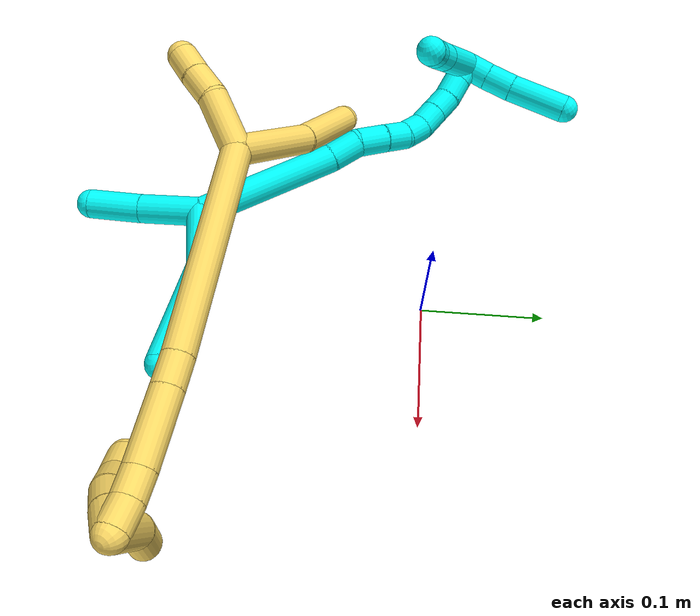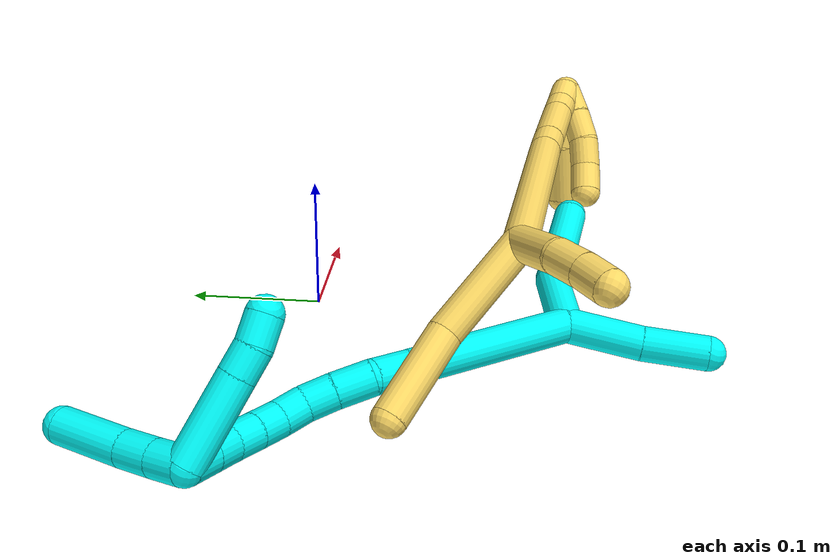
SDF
<sdf version="1.7">
 <world name="default">
  <model name="3">
   <static>0</static>
   <link name="3">
    <collision name="collision-cylinder-e_1_2_8">
     <pose>0.028503 -0.000147 -0.002781 3.08887 1.4734 3.08347</pose>
     <geometry><cylinder><radius>0.0125</radius><length>0.057277</length></cylinder></geometry>
     <surface>
      <friction><ode><mu>1.16</mu><mu2>1.16</mu2><slip1>0</slip1><slip2>0</slip2></ode></friction>
      <contact><ode><kp>1e+06</kp><kd>1</kd><max_vel>0</max_vel><min_depth>0.001</min_depth></ode></contact>
     </surface>
    </collision>
    <visual name="visual-cylinder-e_1_2_8">
     <pose>0.028503 -0.000147 -0.002781 3.08887 1.4734 3.08347</pose>
     <geometry><cylinder><radius>0.0125</radius><length>0.057277</length></cylinder></geometry>
     <material><ambient>0.003922 1 0.996078 1</ambient></material>
    </visual>
    <collision name="collision-cylinder-e_2_8_6">
     <pose>0.101322 -0.013623 -0.002784 1.36534 1.27271 1.08199</pose>
     <geometry><cylinder><radius>0.0125</radius><length>0.092723</length></cylinder></geometry>
     <surface>
      <friction><ode><mu>1.16</mu><mu2>1.16</mu2><slip1>0</slip1><slip2>0</slip2></ode></friction>
      <contact><ode><kp>1e+06</kp><kd>1</kd><max_vel>0</max_vel><min_depth>0.001</min_depth></ode></contact>
     </surface>
    </collision>
    <visual name="visual-cylinder-e_2_8_6">
     <pose>0.101322 -0.013623 -0.002784 1.36534 1.27271 1.08199</pose>
     <geometry><cylinder><radius>0.0125</radius><length>0.092723</length></cylinder></geometry>
     <material><ambient>0.003922 1 0.996078 1</ambient></material>
    </visual>
    <collision name="collision-cylinder-e_1_2_9">
     <pose>-0.006811 -0.025396 0.006355 1.3256 -0.25452 -0.199097</pose>
     <geometry><cylinder><radius>0.0125</radius><length>0.054101</length></cylinder></geometry>
     <surface>
      <friction><ode><mu>1.16</mu><mu2>1.16</mu2><slip1>0</slip1><slip2>0</slip2></ode></friction>
      <contact><ode><kp>1e+06</kp><kd>1</kd><max_vel>0</max_vel><min_depth>0.001</min_depth></ode></contact>
     </surface>
    </collision>
    <visual name="visual-cylinder-e_1_2_9">
     <pose>-0.006811 -0.025396 0.006355 1.3256 -0.25452 -0.199097</pose>
     <geometry><cylinder><radius>0.0125</radius><length>0.054101</length></cylinder></geometry>
     <material><ambient>0.003922 1 0.996078 1</ambient></material>
    </visual>
    <collision name="collision-cylinder-e_2_9_5">
     <pose>-0.018758 -0.071855 0.020236 1.22761 -0.225748 -0.159403</pose>
     <geometry><cylinder><radius>0.0125</radius><length>0.045899</length></cylinder></geometry>
     <surface>
      <friction><ode><mu>1.16</mu><mu2>1.16</mu2><slip1>0</slip1><slip2>0</slip2></ode></friction>
      <contact><ode><kp>1e+06</kp><kd>1</kd><max_vel>0</max_vel><min_depth>0.001</min_depth></ode></contact>
     </surface>
    </collision>
    <visual name="visual-cylinder-e_2_9_5">
     <pose>-0.018758 -0.071855 0.020236 1.22761 -0.225748 -0.159403</pose>
     <geometry><cylinder><radius>0.0125</radius><length>0.045899</length></cylinder></geometry>
     <material><ambient>0.003922 1 0.996078 1</ambient></material>
    </visual>
    <collision name="collision-cylinder-e_1_2_10">
     <pose>-0.024795 0.054108 -0.01634 -1.86408 -0.413408 0.55043</pose>
     <geometry><cylinder><radius>0.0125</radius><length>0.123441</length></cylinder></geometry>
     <surface>
      <friction><ode><mu>1.16</mu><mu2>1.16</mu2><slip1>0</slip1><slip2>0</slip2></ode></friction>
      <contact><ode><kp>1e+06</kp><kd>1</kd><max_vel>0</max_vel><min_depth>0.001</min_depth></ode></contact>
     </surface>
    </collision>
    <visual name="visual-cylinder-e_1_2_10">
     <pose>-0.024795 0.054108 -0.01634 -1.86408 -0.413408 0.55043</pose>
     <geometry><cylinder><radius>0.0125</radius><length>0.123441</length></cylinder></geometry>
     <material><ambient>0.003922 1 0.996078 1</ambient></material>
    </visual>
    <collision name="collision-cylinder-e_2_10_11">
     <pose>-0.056179 0.120296 -0.034977 -1.75866 -0.491872 0.58884</pose>
     <geometry><cylinder><radius>0.0125</radius><length>0.027903</length></cylinder></geometry>
     <surface>
      <friction><ode><mu>1.16</mu><mu2>1.16</mu2><slip1>0</slip1><slip2>0</slip2></ode></friction>
      <contact><ode><kp>1e+06</kp><kd>1</kd><max_vel>0</max_vel><min_depth>0.001</min_depth></ode></contact>
     </surface>
    </collision>
    <visual name="visual-cylinder-e_2_10_11">
     <pose>-0.056179 0.120296 -0.034977 -1.75866 -0.491872 0.58884</pose>
     <geometry><cylinder><radius>0.0125</radius><length>0.027903</length></cylinder></geometry>
     <material><ambient>0.003922 1 0.996078 1</ambient></material>
    </visual>
    <collision name="collision-cylinder-e_3_11_12">
     <pose>-0.067004 0.143422 -0.043476 -2.08248 -0.322691 0.542437</pose>
     <geometry><cylinder><radius>0.0125</radius><length>0.026713</length></cylinder></geometry>
     <surface>
      <friction><ode><mu>1.16</mu><mu2>1.16</mu2><slip1>0</slip1><slip2>0</slip2></ode></friction>
      <contact><ode><kp>1e+06</kp><kd>1</kd><max_vel>0</max_vel><min_depth>0.001</min_depth></ode></contact>
     </surface>
    </collision>
    <visual name="visual-cylinder-e_3_11_12">
     <pose>-0.067004 0.143422 -0.043476 -2.08248 -0.322691 0.542437</pose>
     <geometry><cylinder><radius>0.0125</radius><length>0.026713</length></cylinder></geometry>
     <material><ambient>0.003922 1 0.996078 1</ambient></material>
    </visual>
    <collision name="collision-cylinder-e_4_12_13">
     <pose>-0.074937 0.16294 -0.055058 -2.13642 -0.353001 0.627527</pose>
     <geometry><cylinder><radius>0.0125</radius><length>0.021394</length></cylinder></geometry>
     <surface>
      <friction><ode><mu>1.16</mu><mu2>1.16</mu2><slip1>0</slip1><slip2>0</slip2></ode></friction>
      <contact><ode><kp>1e+06</kp><kd>1</kd><max_vel>0</max_vel><min_depth>0.001</min_depth></ode></contact>
     </surface>
    </collision>
    <visual name="visual-cylinder-e_4_12_13">
     <pose>-0.074937 0.16294 -0.055058 -2.13642 -0.353001 0.627527</pose>
     <geometry><cylinder><radius>0.0125</radius><length>0.021394</length></cylinder></geometry>
     <material><ambient>0.003922 1 0.996078 1</ambient></material>
    </visual>
    <collision name="collision-cylinder-e_5_13_14">
     <pose>-0.084659 0.178723 -0.063809 -2.00302 -0.642479 0.959004</pose>
     <geometry><cylinder><radius>0.0125</radius><length>0.020107</length></cylinder></geometry>
     <surface>
      <friction><ode><mu>1.16</mu><mu2>1.16</mu2><slip1>0</slip1><slip2>0</slip2></ode></friction>
      <contact><ode><kp>1e+06</kp><kd>1</kd><max_vel>0</max_vel><min_depth>0.001</min_depth></ode></contact>
     </surface>
    </collision>
    <visual name="visual-cylinder-e_5_13_14">
     <pose>-0.084659 0.178723 -0.063809 -2.00302 -0.642479 0.959004</pose>
     <geometry><cylinder><radius>0.0125</radius><length>0.020107</length></cylinder></geometry>
     <material><ambient>0.003922 1 0.996078 1</ambient></material>
    </visual>
    <collision name="collision-cylinder-e_6_14_15">
     <pose>-0.09776 0.193242 -0.067661 -1.63729 -0.774984 0.822654</pose>
     <geometry><cylinder><radius>0.0125</radius><length>0.020229</length></cylinder></geometry>
     <surface>
      <friction><ode><mu>1.16</mu><mu2>1.16</mu2><slip1>0</slip1><slip2>0</slip2></ode></friction>
      <contact><ode><kp>1e+06</kp><kd>1</kd><max_vel>0</max_vel><min_depth>0.001</min_depth></ode></contact>
     </surface>
    </collision>
    <visual name="visual-cylinder-e_6_14_15">
     <pose>-0.09776 0.193242 -0.067661 -1.63729 -0.774984 0.822654</pose>
     <geometry><cylinder><radius>0.0125</radius><length>0.020229</length></cylinder></geometry>
     <material><ambient>0.003922 1 0.996078 1</ambient></material>
    </visual>
    <collision name="collision-cylinder-e_7_15_16">
     <pose>-0.111805 0.207695 -0.06857 -1.63003 -0.765199 0.807132</pose>
     <geometry><cylinder><radius>0.0125</radius><length>0.020119</length></cylinder></geometry>
     <surface>
      <friction><ode><mu>1.16</mu><mu2>1.16</mu2><slip1>0</slip1><slip2>0</slip2></ode></friction>
      <contact><ode><kp>1e+06</kp><kd>1</kd><max_vel>0</max_vel><min_depth>0.001</min_depth></ode></contact>
     </surface>
    </collision>
    <visual name="visual-cylinder-e_7_15_16">
     <pose>-0.111805 0.207695 -0.06857 -1.63003 -0.765199 0.807132</pose>
     <geometry><cylinder><radius>0.0125</radius><length>0.020119</length></cylinder></geometry>
     <material><ambient>0.003922 1 0.996078 1</ambient></material>
    </visual>
    <collision name="collision-cylinder-e_8_16_17">
     <pose>-0.126449 0.221267 -0.06768 -1.36526 -0.870782 0.72312</pose>
     <geometry><cylinder><radius>0.0125</radius><length>0.020072</length></cylinder></geometry>
     <surface>
      <friction><ode><mu>1.16</mu><mu2>1.16</mu2><slip1>0</slip1><slip2>0</slip2></ode></friction>
      <contact><ode><kp>1e+06</kp><kd>1</kd><max_vel>0</max_vel><min_depth>0.001</min_depth></ode></contact>
     </surface>
    </collision>
    <visual name="visual-cylinder-e_8_16_17">
     <pose>-0.126449 0.221267 -0.06768 -1.36526 -0.870782 0.72312</pose>
     <geometry><cylinder><radius>0.0125</radius><length>0.020072</length></cylinder></geometry>
     <material><ambient>0.003922 1 0.996078 1</ambient></material>
    </visual>
    <collision name="collision-cylinder-e_9_17_1">
     <pose>-0.141765 0.233925 -0.065016 -1.3615 -0.868075 0.718253</pose>
     <geometry><cylinder><radius>0.0125</radius><length>0.020023</length></cylinder></geometry>
     <surface>
      <friction><ode><mu>1.16</mu><mu2>1.16</mu2><slip1>0</slip1><slip2>0</slip2></ode></friction>
      <contact><ode><kp>1e+06</kp><kd>1</kd><max_vel>0</max_vel><min_depth>0.001</min_depth></ode></contact>
     </surface>
    </collision>
    <visual name="visual-cylinder-e_9_17_1">
     <pose>-0.141765 0.233925 -0.065016 -1.3615 -0.868075 0.718253</pose>
     <geometry><cylinder><radius>0.0125</radius><length>0.020023</length></cylinder></geometry>
     <material><ambient>0.003922 1 0.996078 1</ambient></material>
    </visual>
    <collision name="collision-cylinder-e_1_1_18">
     <pose>-0.143473 0.248053 -0.069681 -2.22731 0.542192 -1.02863</pose>
     <geometry><cylinder><radius>0.0125</radius><length>0.022987</length></cylinder></geometry>
     <surface>
      <friction><ode><mu>1.16</mu><mu2>1.16</mu2><slip1>0</slip1><slip2>0</slip2></ode></friction>
      <contact><ode><kp>1e+06</kp><kd>1</kd><max_vel>0</max_vel><min_depth>0.001</min_depth></ode></contact>
     </surface>
    </collision>
    <visual name="visual-cylinder-e_1_1_18">
     <pose>-0.143473 0.248053 -0.069681 -2.22731 0.542192 -1.02863</pose>
     <geometry><cylinder><radius>0.0125</radius><length>0.022987</length></cylinder></geometry>
     <material><ambient>0.003922 1 0.996078 1</ambient></material>
    </visual>
    <collision name="collision-cylinder-e_2_18_19">
     <pose>-0.131129 0.264778 -0.081741 -2.16652 0.536559 -0.956627</pose>
     <geometry><cylinder><radius>0.0125</radius><length>0.025093</length></cylinder></geometry>
     <surface>
      <friction><ode><mu>1.16</mu><mu2>1.16</mu2><slip1>0</slip1><slip2>0</slip2></ode></friction>
      <contact><ode><kp>1e+06</kp><kd>1</kd><max_vel>0</max_vel><min_depth>0.001</min_depth></ode></contact>
     </surface>
    </collision>
    <visual name="visual-cylinder-e_2_18_19">
     <pose>-0.131129 0.264778 -0.081741 -2.16652 0.536559 -0.956627</pose>
     <geometry><cylinder><radius>0.0125</radius><length>0.025093</length></cylinder></geometry>
     <material><ambient>0.003922 1 0.996078 1</ambient></material>
    </visual>
    <collision name="collision-cylinder-e_3_19_4">
     <pose>-0.111621 0.293326 -0.098626 -2.07529 0.528713 -0.86009</pose>
     <geometry><cylinder><radius>0.0125</radius><length>0.051919</length></cylinder></geometry>
     <surface>
      <friction><ode><mu>1.16</mu><mu2>1.16</mu2><slip1>0</slip1><slip2>0</slip2></ode></friction>
      <contact><ode><kp>1e+06</kp><kd>1</kd><max_vel>0</max_vel><min_depth>0.001</min_depth></ode></contact>
     </surface>
    </collision>
    <visual name="visual-cylinder-e_3_19_4">
     <pose>-0.111621 0.293326 -0.098626 -2.07529 0.528713 -0.86009</pose>
     <geometry><cylinder><radius>0.0125</radius><length>0.051919</length></cylinder></geometry>
     <material><ambient>0.003922 1 0.996078 1</ambient></material>
    </visual>
    <collision name="collision-cylinder-e_1_1_20">
     <pose>-0.131268 0.232924 -0.041096 0.313965 0.652446 0.106997</pose>
     <geometry><cylinder><radius>0.0125</radius><length>0.059743</length></cylinder></geometry>
     <surface>
      <friction><ode><mu>1.16</mu><mu2>1.16</mu2><slip1>0</slip1><slip2>0</slip2></ode></friction>
      <contact><ode><kp>1e+06</kp><kd>1</kd><max_vel>0</max_vel><min_depth>0.001</min_depth></ode></contact>
     </surface>
    </collision>
    <visual name="visual-cylinder-e_1_1_20">
     <pose>-0.131268 0.232924 -0.041096 0.313965 0.652446 0.106997</pose>
     <geometry><cylinder><radius>0.0125</radius><length>0.059743</length></cylinder></geometry>
     <material><ambient>0.003922 1 0.996078 1</ambient></material>
    </visual>
    <collision name="collision-cylinder-e_2_20_21">
     <pose>-0.107195 0.223134 -0.010824 0.309382 0.633743 0.102181</pose>
     <geometry><cylinder><radius>0.0125</radius><length>0.020054</length></cylinder></geometry>
     <surface>
      <friction><ode><mu>1.16</mu><mu2>1.16</mu2><slip1>0</slip1><slip2>0</slip2></ode></friction>
      <contact><ode><kp>1e+06</kp><kd>1</kd><max_vel>0</max_vel><min_depth>0.001</min_depth></ode></contact>
     </surface>
    </collision>
    <visual name="visual-cylinder-e_2_20_21">
     <pose>-0.107195 0.223134 -0.010824 0.309382 0.633743 0.102181</pose>
     <geometry><cylinder><radius>0.0125</radius><length>0.020054</length></cylinder></geometry>
     <material><ambient>0.003922 1 0.996078 1</ambient></material>
    </visual>
    <collision name="collision-cylinder-e_3_21_3">
     <pose>-0.094177 0.219971 0.004043 0.097658 0.776608 0.039976</pose>
     <geometry><cylinder><radius>0.0125</radius><length>0.020203</length></cylinder></geometry>
     <surface>
      <friction><ode><mu>1.16</mu><mu2>1.16</mu2><slip1>0</slip1><slip2>0</slip2></ode></friction>
      <contact><ode><kp>1e+06</kp><kd>1</kd><max_vel>0</max_vel><min_depth>0.001</min_depth></ode></contact>
     </surface>
    </collision>
    <visual name="visual-cylinder-e_3_21_3">
     <pose>-0.094177 0.219971 0.004043 0.097658 0.776608 0.039976</pose>
     <geometry><cylinder><radius>0.0125</radius><length>0.020203</length></cylinder></geometry>
     <material><ambient>0.003922 1 0.996078 1</ambient></material>
    </visual>
    <collision name="collision-sphere-3">
     <pose>-0.087098 0.219268 0.011214 0 -0 0</pose>
     <geometry><sphere><radius>0.0125</radius></sphere></geometry>
     <surface>
      <friction><ode><mu>1.16</mu><mu2>1.16</mu2><slip1>0</slip1><slip2>0</slip2></ode></friction>
      <contact><ode><kp>1e+06</kp><kd>1</kd><max_vel>0</max_vel><min_depth>0.001</min_depth></ode></contact>
     </surface>
    </collision>
    <visual name="visual-sphere-3">
     <pose>-0.087098 0.219268 0.011214 0 -0 0</pose>
     <geometry><sphere><radius>0.0125</radius></sphere></geometry>
     <material><ambient>0.003922 1 0.996078 1</ambient></material>
    </visual>
    <collision name="collision-sphere-21">
     <pose>-0.101257 0.220674 -0.003128 0 -0 0</pose>
     <geometry><sphere><radius>0.0125</radius></sphere></geometry>
     <surface>
      <friction><ode><mu>1.16</mu><mu2>1.16</mu2><slip1>0</slip1><slip2>0</slip2></ode></friction>
      <contact><ode><kp>1e+06</kp><kd>1</kd><max_vel>0</max_vel><min_depth>0.001</min_depth></ode></contact>
     </surface>
    </collision>
    <visual name="visual-sphere-21">
     <pose>-0.101257 0.220674 -0.003128 0 -0 0</pose>
     <geometry><sphere><radius>0.0125</radius></sphere></geometry>
     <material><ambient>0.003922 1 0.996078 1</ambient></material>
    </visual>
    <collision name="collision-sphere-20">
     <pose>-0.113132 0.225594 -0.018521 0 -0 0</pose>
     <geometry><sphere><radius>0.0125</radius></sphere></geometry>
     <surface>
      <friction><ode><mu>1.16</mu><mu2>1.16</mu2><slip1>0</slip1><slip2>0</slip2></ode></friction>
      <contact><ode><kp>1e+06</kp><kd>1</kd><max_vel>0</max_vel><min_depth>0.001</min_depth></ode></contact>
     </surface>
    </collision>
    <visual name="visual-sphere-20">
     <pose>-0.113132 0.225594 -0.018521 0 -0 0</pose>
     <geometry><sphere><radius>0.0125</radius></sphere></geometry>
     <material><ambient>0.003922 1 0.996078 1</ambient></material>
    </visual>
    <collision name="collision-sphere-4">
     <pose>-0.098526 0.312949 -0.109461 0 -0 0</pose>
     <geometry><sphere><radius>0.0125</radius></sphere></geometry>
     <surface>
      <friction><ode><mu>1.16</mu><mu2>1.16</mu2><slip1>0</slip1><slip2>0</slip2></ode></friction>
      <contact><ode><kp>1e+06</kp><kd>1</kd><max_vel>0</max_vel><min_depth>0.001</min_depth></ode></contact>
     </surface>
    </collision>
    <visual name="visual-sphere-4">
     <pose>-0.098526 0.312949 -0.109461 0 -0 0</pose>
     <geometry><sphere><radius>0.0125</radius></sphere></geometry>
     <material><ambient>0.003922 1 0.996078 1</ambient></material>
    </visual>
    <collision name="collision-sphere-10">
     <pose>-0.04959 0.108215 -0.03268 0 -0 0</pose>
     <geometry><sphere><radius>0.0125</radius></sphere></geometry>
     <surface>
      <friction><ode><mu>1.16</mu><mu2>1.16</mu2><slip1>0</slip1><slip2>0</slip2></ode></friction>
      <contact><ode><kp>1e+06</kp><kd>1</kd><max_vel>0</max_vel><min_depth>0.001</min_depth></ode></contact>
     </surface>
    </collision>
    <visual name="visual-sphere-10">
     <pose>-0.04959 0.108215 -0.03268 0 -0 0</pose>
     <geometry><sphere><radius>0.0125</radius></sphere></geometry>
     <material><ambient>0.003922 1 0.996078 1</ambient></material>
    </visual>
    <collision name="collision-sphere-5">
     <pose>-0.023895 -0.092918 0.027762 0 -0 0</pose>
     <geometry><sphere><radius>0.0125</radius></sphere></geometry>
     <surface>
      <friction><ode><mu>1.16</mu><mu2>1.16</mu2><slip1>0</slip1><slip2>0</slip2></ode></friction>
      <contact><ode><kp>1e+06</kp><kd>1</kd><max_vel>0</max_vel><min_depth>0.001</min_depth></ode></contact>
     </surface>
    </collision>
    <visual name="visual-sphere-5">
     <pose>-0.023895 -0.092918 0.027762 0 -0 0</pose>
     <geometry><sphere><radius>0.0125</radius></sphere></geometry>
     <material><ambient>0.003922 1 0.996078 1</ambient></material>
    </visual>
    <collision name="collision-sphere-6">
     <pose>0.145639 -0.026953 -6e-06 0 -0 0</pose>
     <geometry><sphere><radius>0.0125</radius></sphere></geometry>
     <surface>
      <friction><ode><mu>1.16</mu><mu2>1.16</mu2><slip1>0</slip1><slip2>0</slip2></ode></friction>
      <contact><ode><kp>1e+06</kp><kd>1</kd><max_vel>0</max_vel><min_depth>0.001</min_depth></ode></contact>
     </surface>
    </collision>
    <visual name="visual-sphere-6">
     <pose>0.145639 -0.026953 -6e-06 0 -0 0</pose>
     <geometry><sphere><radius>0.0125</radius></sphere></geometry>
     <material><ambient>0.003922 1 0.996078 1</ambient></material>
    </visual>
    <collision name="collision-sphere-9">
     <pose>-0.013621 -0.050792 0.01271 0 -0 0</pose>
     <geometry><sphere><radius>0.0125</radius></sphere></geometry>
     <surface>
      <friction><ode><mu>1.16</mu><mu2>1.16</mu2><slip1>0</slip1><slip2>0</slip2></ode></friction>
      <contact><ode><kp>1e+06</kp><kd>1</kd><max_vel>0</max_vel><min_depth>0.001</min_depth></ode></contact>
     </surface>
    </collision>
    <visual name="visual-sphere-9">
     <pose>-0.013621 -0.050792 0.01271 0 -0 0</pose>
     <geometry><sphere><radius>0.0125</radius></sphere></geometry>
     <material><ambient>0.003922 1 0.996078 1</ambient></material>
    </visual>
    <collision name="collision-sphere-2">
     <geometry><sphere><radius>0.0125</radius></sphere></geometry>
     <surface>
      <friction><ode><mu>1.16</mu><mu2>1.16</mu2><slip1>0</slip1><slip2>0</slip2></ode></friction>
      <contact><ode><kp>1e+06</kp><kd>1</kd><max_vel>0</max_vel><min_depth>0.001</min_depth></ode></contact>
     </surface>
    </collision>
    <visual name="visual-sphere-2">
     <geometry><sphere><radius>0.0125</radius></sphere></geometry>
     <material><ambient>0.003922 1 0.996078 1</ambient></material>
    </visual>
    <collision name="collision-sphere-19">
     <pose>-0.124715 0.273704 -0.087792 0 -0 0</pose>
     <geometry><sphere><radius>0.0125</radius></sphere></geometry>
     <surface>
      <friction><ode><mu>1.16</mu><mu2>1.16</mu2><slip1>0</slip1><slip2>0</slip2></ode></friction>
      <contact><ode><kp>1e+06</kp><kd>1</kd><max_vel>0</max_vel><min_depth>0.001</min_depth></ode></contact>
     </surface>
    </collision>
    <visual name="visual-sphere-19">
     <pose>-0.124715 0.273704 -0.087792 0 -0 0</pose>
     <geometry><sphere><radius>0.0125</radius></sphere></geometry>
     <material><ambient>0.003922 1 0.996078 1</ambient></material>
    </visual>
    <collision name="collision-sphere-8">
     <pose>0.057006 -0.000294 -0.005562 0 -0 0</pose>
     <geometry><sphere><radius>0.0125</radius></sphere></geometry>
     <surface>
      <friction><ode><mu>1.16</mu><mu2>1.16</mu2><slip1>0</slip1><slip2>0</slip2></ode></friction>
      <contact><ode><kp>1e+06</kp><kd>1</kd><max_vel>0</max_vel><min_depth>0.001</min_depth></ode></contact>
     </surface>
    </collision>
    <visual name="visual-sphere-8">
     <pose>0.057006 -0.000294 -0.005562 0 -0 0</pose>
     <geometry><sphere><radius>0.0125</radius></sphere></geometry>
     <material><ambient>0.003922 1 0.996078 1</ambient></material>
    </visual>
    <collision name="collision-sphere-11">
     <pose>-0.062768 0.132377 -0.037274 0 -0 0</pose>
     <geometry><sphere><radius>0.0125</radius></sphere></geometry>
     <surface>
      <friction><ode><mu>1.16</mu><mu2>1.16</mu2><slip1>0</slip1><slip2>0</slip2></ode></friction>
      <contact><ode><kp>1e+06</kp><kd>1</kd><max_vel>0</max_vel><min_depth>0.001</min_depth></ode></contact>
     </surface>
    </collision>
    <visual name="visual-sphere-11">
     <pose>-0.062768 0.132377 -0.037274 0 -0 0</pose>
     <geometry><sphere><radius>0.0125</radius></sphere></geometry>
     <material><ambient>0.003922 1 0.996078 1</ambient></material>
    </visual>
    <collision name="collision-sphere-12">
     <pose>-0.071239 0.154466 -0.049678 0 -0 0</pose>
     <geometry><sphere><radius>0.0125</radius></sphere></geometry>
     <surface>
      <friction><ode><mu>1.16</mu><mu2>1.16</mu2><slip1>0</slip1><slip2>0</slip2></ode></friction>
      <contact><ode><kp>1e+06</kp><kd>1</kd><max_vel>0</max_vel><min_depth>0.001</min_depth></ode></contact>
     </surface>
    </collision>
    <visual name="visual-sphere-12">
     <pose>-0.071239 0.154466 -0.049678 0 -0 0</pose>
     <geometry><sphere><radius>0.0125</radius></sphere></geometry>
     <material><ambient>0.003922 1 0.996078 1</ambient></material>
    </visual>
    <collision name="collision-sphere-13">
     <pose>-0.078635 0.171415 -0.060437 0 -0 0</pose>
     <geometry><sphere><radius>0.0125</radius></sphere></geometry>
     <surface>
      <friction><ode><mu>1.16</mu><mu2>1.16</mu2><slip1>0</slip1><slip2>0</slip2></ode></friction>
      <contact><ode><kp>1e+06</kp><kd>1</kd><max_vel>0</max_vel><min_depth>0.001</min_depth></ode></contact>
     </surface>
    </collision>
    <visual name="visual-sphere-13">
     <pose>-0.078635 0.171415 -0.060437 0 -0 0</pose>
     <geometry><sphere><radius>0.0125</radius></sphere></geometry>
     <material><ambient>0.003922 1 0.996078 1</ambient></material>
    </visual>
    <collision name="collision-sphere-14">
     <pose>-0.090683 0.186032 -0.06718 0 -0 0</pose>
     <geometry><sphere><radius>0.0125</radius></sphere></geometry>
     <surface>
      <friction><ode><mu>1.16</mu><mu2>1.16</mu2><slip1>0</slip1><slip2>0</slip2></ode></friction>
      <contact><ode><kp>1e+06</kp><kd>1</kd><max_vel>0</max_vel><min_depth>0.001</min_depth></ode></contact>
     </surface>
    </collision>
    <visual name="visual-sphere-14">
     <pose>-0.090683 0.186032 -0.06718 0 -0 0</pose>
     <geometry><sphere><radius>0.0125</radius></sphere></geometry>
     <material><ambient>0.003922 1 0.996078 1</ambient></material>
    </visual>
    <collision name="collision-sphere-15">
     <pose>-0.104837 0.200452 -0.068141 0 -0 0</pose>
     <geometry><sphere><radius>0.0125</radius></sphere></geometry>
     <surface>
      <friction><ode><mu>1.16</mu><mu2>1.16</mu2><slip1>0</slip1><slip2>0</slip2></ode></friction>
      <contact><ode><kp>1e+06</kp><kd>1</kd><max_vel>0</max_vel><min_depth>0.001</min_depth></ode></contact>
     </surface>
    </collision>
    <visual name="visual-sphere-15">
     <pose>-0.104837 0.200452 -0.068141 0 -0 0</pose>
     <geometry><sphere><radius>0.0125</radius></sphere></geometry>
     <material><ambient>0.003922 1 0.996078 1</ambient></material>
    </visual>
    <collision name="collision-sphere-16">
     <pose>-0.118774 0.214938 -0.069 0 -0 0</pose>
     <geometry><sphere><radius>0.0125</radius></sphere></geometry>
     <surface>
      <friction><ode><mu>1.16</mu><mu2>1.16</mu2><slip1>0</slip1><slip2>0</slip2></ode></friction>
      <contact><ode><kp>1e+06</kp><kd>1</kd><max_vel>0</max_vel><min_depth>0.001</min_depth></ode></contact>
     </surface>
    </collision>
    <visual name="visual-sphere-16">
     <pose>-0.118774 0.214938 -0.069 0 -0 0</pose>
     <geometry><sphere><radius>0.0125</radius></sphere></geometry>
     <material><ambient>0.003922 1 0.996078 1</ambient></material>
    </visual>
    <collision name="collision-sphere-17">
     <pose>-0.134125 0.227596 -0.066361 0 -0 0</pose>
     <geometry><sphere><radius>0.0125</radius></sphere></geometry>
     <surface>
      <friction><ode><mu>1.16</mu><mu2>1.16</mu2><slip1>0</slip1><slip2>0</slip2></ode></friction>
      <contact><ode><kp>1e+06</kp><kd>1</kd><max_vel>0</max_vel><min_depth>0.001</min_depth></ode></contact>
     </surface>
    </collision>
    <visual name="visual-sphere-17">
     <pose>-0.134125 0.227596 -0.066361 0 -0 0</pose>
     <geometry><sphere><radius>0.0125</radius></sphere></geometry>
     <material><ambient>0.003922 1 0.996078 1</ambient></material>
    </visual>
    <collision name="collision-sphere-1">
     <pose>-0.149404 0.240255 -0.063672 0 -0 0</pose>
     <geometry><sphere><radius>0.0125</radius></sphere></geometry>
     <surface>
      <friction><ode><mu>1.16</mu><mu2>1.16</mu2><slip1>0</slip1><slip2>0</slip2></ode></friction>
      <contact><ode><kp>1e+06</kp><kd>1</kd><max_vel>0</max_vel><min_depth>0.001</min_depth></ode></contact>
     </surface>
    </collision>
    <visual name="visual-sphere-1">
     <pose>-0.149404 0.240255 -0.063672 0 -0 0</pose>
     <geometry><sphere><radius>0.0125</radius></sphere></geometry>
     <material><ambient>0.003922 1 0.996078 1</ambient></material>
    </visual>
    <collision name="collision-sphere-18">
     <pose>-0.137542 0.255852 -0.07569 0 -0 0</pose>
     <geometry><sphere><radius>0.0125</radius></sphere></geometry>
     <surface>
      <friction><ode><mu>1.16</mu><mu2>1.16</mu2><slip1>0</slip1><slip2>0</slip2></ode></friction>
      <contact><ode><kp>1e+06</kp><kd>1</kd><max_vel>0</max_vel><min_depth>0.001</min_depth></ode></contact>
     </surface>
    </collision>
    <visual name="visual-sphere-18">
     <pose>-0.137542 0.255852 -0.07569 0 -0 0</pose>
     <geometry><sphere><radius>0.0125</radius></sphere></geometry>
     <material><ambient>0.003922 1 0.996078 1</ambient></material>
    </visual>
    <inertial>
     <pose>-0.045077 0.110167 -0.030044 0 -0 0</pose>
     <mass>0.75</mass>
     <inertia>
      <ixx>0.00029</ixx>
      <ixy>0</ixy>
      <ixz>0</ixz>
      <iyy>0.00021</iyy>
      <iyz>0</iyz>
      <izz>-0.000146</izz>
     </inertia>
    </inertial>
   </link>
   <pose>-0.065141 -0.189606 0.027519 0.364891 -0.20775 0.138716</pose>
  </model>
  <model name="5">
   <static>0</static>
   <link name="5">
    <collision name="collision-cylinder-e_1_2_8">
     <pose>0.00988 0.005043 -0.039006 -3.01301 0.246116 -2.18174</pose>
     <geometry><cylinder><radius>0.0125</radius><length>0.081105</length></cylinder></geometry>
     <surface>
      <friction><ode><mu>1.16</mu><mu2>1.16</mu2><slip1>0</slip1><slip2>0</slip2></ode></friction>
      <contact><ode><kp>1e+06</kp><kd>1</kd><max_vel>0</max_vel><min_depth>0.001</min_depth></ode></contact>
     </surface>
    </collision>
    <visual name="visual-cylinder-e_1_2_8">
     <pose>0.00988 0.005043 -0.039006 -3.01301 0.246116 -2.18174</pose>
     <geometry><cylinder><radius>0.0125</radius><length>0.081105</length></cylinder></geometry>
     <material><ambient>1 0.858824 0.4 1</ambient></material>
    </visual>
    <collision name="collision-cylinder-e_2_8_6">
     <pose>0.021415 0.013528 -0.112247 -3.04141 0.048056 -0.894007</pose>
     <geometry><cylinder><radius>0.0125</radius><length>0.068895</length></cylinder></geometry>
     <surface>
      <friction><ode><mu>1.16</mu><mu2>1.16</mu2><slip1>0</slip1><slip2>0</slip2></ode></friction>
      <contact><ode><kp>1e+06</kp><kd>1</kd><max_vel>0</max_vel><min_depth>0.001</min_depth></ode></contact>
     </surface>
    </collision>
    <visual name="visual-cylinder-e_2_8_6">
     <pose>0.021415 0.013528 -0.112247 -3.04141 0.048056 -0.894007</pose>
     <geometry><cylinder><radius>0.0125</radius><length>0.068895</length></cylinder></geometry>
     <material><ambient>1 0.858824 0.4 1</ambient></material>
    </visual>
    <collision name="collision-cylinder-e_1_2_9">
     <pose>-0.023277 0.000344 -0.00855 -3.10139 -1.21853 3.08399</pose>
     <geometry><cylinder><radius>0.0125</radius><length>0.0496</length></cylinder></geometry>
     <surface>
      <friction><ode><mu>1.16</mu><mu2>1.16</mu2><slip1>0</slip1><slip2>0</slip2></ode></friction>
      <contact><ode><kp>1e+06</kp><kd>1</kd><max_vel>0</max_vel><min_depth>0.001</min_depth></ode></contact>
     </surface>
    </collision>
    <visual name="visual-cylinder-e_1_2_9">
     <pose>-0.023277 0.000344 -0.00855 -3.10139 -1.21853 3.08399</pose>
     <geometry><cylinder><radius>0.0125</radius><length>0.0496</length></cylinder></geometry>
     <material><ambient>1 0.858824 0.4 1</ambient></material>
    </visual>
    <collision name="collision-cylinder-e_2_9_10">
     <pose>-0.05828 -0.002616 -0.021723 2.52121 -1.11949 -2.1959</pose>
     <geometry><cylinder><radius>0.0125</radius><length>0.02606</length></cylinder></geometry>
     <surface>
      <friction><ode><mu>1.16</mu><mu2>1.16</mu2><slip1>0</slip1><slip2>0</slip2></ode></friction>
      <contact><ode><kp>1e+06</kp><kd>1</kd><max_vel>0</max_vel><min_depth>0.001</min_depth></ode></contact>
     </surface>
    </collision>
    <visual name="visual-cylinder-e_2_9_10">
     <pose>-0.05828 -0.002616 -0.021723 2.52121 -1.11949 -2.1959</pose>
     <geometry><cylinder><radius>0.0125</radius><length>0.02606</length></cylinder></geometry>
     <material><ambient>1 0.858824 0.4 1</ambient></material>
    </visual>
    <collision name="collision-cylinder-e_3_10_5">
     <pose>-0.080642 -0.008825 -0.031497 2.62787 -1.06349 -2.30171</pose>
     <geometry><cylinder><radius>0.0125</radius><length>0.02434</length></cylinder></geometry>
     <surface>
      <friction><ode><mu>1.16</mu><mu2>1.16</mu2><slip1>0</slip1><slip2>0</slip2></ode></friction>
      <contact><ode><kp>1e+06</kp><kd>1</kd><max_vel>0</max_vel><min_depth>0.001</min_depth></ode></contact>
     </surface>
    </collision>
    <visual name="visual-cylinder-e_3_10_5">
     <pose>-0.080642 -0.008825 -0.031497 2.62787 -1.06349 -2.30171</pose>
     <geometry><cylinder><radius>0.0125</radius><length>0.02434</length></cylinder></geometry>
     <material><ambient>1 0.858824 0.4 1</ambient></material>
    </visual>
    <collision name="collision-cylinder-e_1_2_11">
     <pose>0.048893 -0.023426 0.069315 0.325912 0.589094 0.099674</pose>
     <geometry><cylinder><radius>0.0125</radius><length>0.175999</length></cylinder></geometry>
     <surface>
      <friction><ode><mu>1.16</mu><mu2>1.16</mu2><slip1>0</slip1><slip2>0</slip2></ode></friction>
      <contact><ode><kp>1e+06</kp><kd>1</kd><max_vel>0</max_vel><min_depth>0.001</min_depth></ode></contact>
     </surface>
    </collision>
    <visual name="visual-cylinder-e_1_2_11">
     <pose>0.048893 -0.023426 0.069315 0.325912 0.589094 0.099674</pose>
     <geometry><cylinder><radius>0.0125</radius><length>0.175999</length></cylinder></geometry>
     <material><ambient>1 0.858824 0.4 1</ambient></material>
    </visual>
    <collision name="collision-cylinder-e_2_11_12">
     <pose>0.104145 -0.050074 0.148589 0.312911 0.545901 0.08826</pose>
     <geometry><cylinder><radius>0.0125</radius><length>0.024493</length></cylinder></geometry>
     <surface>
      <friction><ode><mu>1.16</mu><mu2>1.16</mu2><slip1>0</slip1><slip2>0</slip2></ode></friction>
      <contact><ode><kp>1e+06</kp><kd>1</kd><max_vel>0</max_vel><min_depth>0.001</min_depth></ode></contact>
     </surface>
    </collision>
    <visual name="visual-cylinder-e_2_11_12">
     <pose>0.104145 -0.050074 0.148589 0.312911 0.545901 0.08826</pose>
     <geometry><cylinder><radius>0.0125</radius><length>0.024493</length></cylinder></geometry>
     <material><ambient>1 0.858824 0.4 1</ambient></material>
    </visual>
    <collision name="collision-cylinder-e_3_12_13">
     <pose>0.124766 -0.060569 0.181688 0.304519 0.531536 0.08349</pose>
     <geometry><cylinder><radius>0.0125</radius><length>0.056277</length></cylinder></geometry>
     <surface>
      <friction><ode><mu>1.16</mu><mu2>1.16</mu2><slip1>0</slip1><slip2>0</slip2></ode></friction>
      <contact><ode><kp>1e+06</kp><kd>1</kd><max_vel>0</max_vel><min_depth>0.001</min_depth></ode></contact>
     </surface>
    </collision>
    <visual name="visual-cylinder-e_3_12_13">
     <pose>0.124766 -0.060569 0.181688 0.304519 0.531536 0.08349</pose>
     <geometry><cylinder><radius>0.0125</radius><length>0.056277</length></cylinder></geometry>
     <material><ambient>1 0.858824 0.4 1</ambient></material>
    </visual>
    <collision name="collision-cylinder-e_4_13_14">
     <pose>0.143853 -0.070304 0.213882 0.265578 0.475022 0.064649</pose>
     <geometry><cylinder><radius>0.0125</radius><length>0.021101</length></cylinder></geometry>
     <surface>
      <friction><ode><mu>1.16</mu><mu2>1.16</mu2><slip1>0</slip1><slip2>0</slip2></ode></friction>
      <contact><ode><kp>1e+06</kp><kd>1</kd><max_vel>0</max_vel><min_depth>0.001</min_depth></ode></contact>
     </surface>
    </collision>
    <visual name="visual-cylinder-e_4_13_14">
     <pose>0.143853 -0.070304 0.213882 0.265578 0.475022 0.064649</pose>
     <geometry><cylinder><radius>0.0125</radius><length>0.021101</length></cylinder></geometry>
     <material><ambient>1 0.858824 0.4 1</ambient></material>
    </visual>
    <collision name="collision-cylinder-e_5_14_1">
     <pose>0.152304 -0.074134 0.233299 0.131132 0.333796 0.022122</pose>
     <geometry><cylinder><radius>0.0125</radius><length>0.022129</length></cylinder></geometry>
     <surface>
      <friction><ode><mu>1.16</mu><mu2>1.16</mu2><slip1>0</slip1><slip2>0</slip2></ode></friction>
      <contact><ode><kp>1e+06</kp><kd>1</kd><max_vel>0</max_vel><min_depth>0.001</min_depth></ode></contact>
     </surface>
    </collision>
    <visual name="visual-cylinder-e_5_14_1">
     <pose>0.152304 -0.074134 0.233299 0.131132 0.333796 0.022122</pose>
     <geometry><cylinder><radius>0.0125</radius><length>0.022129</length></cylinder></geometry>
     <material><ambient>1 0.858824 0.4 1</ambient></material>
    </visual>
    <collision name="collision-cylinder-e_1_1_15">
     <pose>0.163981 -0.090256 0.225227 2.46662 0.32865 0.88288</pose>
     <geometry><cylinder><radius>0.0125</radius><length>0.049898</length></cylinder></geometry>
     <surface>
      <friction><ode><mu>1.16</mu><mu2>1.16</mu2><slip1>0</slip1><slip2>0</slip2></ode></friction>
      <contact><ode><kp>1e+06</kp><kd>1</kd><max_vel>0</max_vel><min_depth>0.001</min_depth></ode></contact>
     </surface>
    </collision>
    <visual name="visual-cylinder-e_1_1_15">
     <pose>0.163981 -0.090256 0.225227 2.46662 0.32865 0.88288</pose>
     <geometry><cylinder><radius>0.0125</radius><length>0.049898</length></cylinder></geometry>
     <material><ambient>1 0.858824 0.4 1</ambient></material>
    </visual>
    <collision name="collision-cylinder-e_2_15_4">
     <pose>0.181277 -0.123906 0.193185 2.19494 0.377901 0.714704</pose>
     <geometry><cylinder><radius>0.0125</radius><length>0.050102</length></cylinder></geometry>
     <surface>
      <friction><ode><mu>1.16</mu><mu2>1.16</mu2><slip1>0</slip1><slip2>0</slip2></ode></friction>
      <contact><ode><kp>1e+06</kp><kd>1</kd><max_vel>0</max_vel><min_depth>0.001</min_depth></ode></contact>
     </surface>
    </collision>
    <visual name="visual-cylinder-e_2_15_4">
     <pose>0.181277 -0.123906 0.193185 2.19494 0.377901 0.714704</pose>
     <geometry><cylinder><radius>0.0125</radius><length>0.050102</length></cylinder></geometry>
     <material><ambient>1 0.858824 0.4 1</ambient></material>
    </visual>
    <collision name="collision-cylinder-e_1_1_16">
     <pose>0.151528 -0.08287 0.234241 2.47782 -0.352537 -0.954036</pose>
     <geometry><cylinder><radius>0.0125</radius><length>0.025491</length></cylinder></geometry>
     <surface>
      <friction><ode><mu>1.16</mu><mu2>1.16</mu2><slip1>0</slip1><slip2>0</slip2></ode></friction>
      <contact><ode><kp>1e+06</kp><kd>1</kd><max_vel>0</max_vel><min_depth>0.001</min_depth></ode></contact>
     </surface>
    </collision>
    <visual name="visual-cylinder-e_1_1_16">
     <pose>0.151528 -0.08287 0.234241 2.47782 -0.352537 -0.954036</pose>
     <geometry><cylinder><radius>0.0125</radius><length>0.025491</length></cylinder></geometry>
     <material><ambient>1 0.858824 0.4 1</ambient></material>
    </visual>
    <collision name="collision-cylinder-e_2_16_17">
     <pose>0.143586 -0.09759 0.215022 2.49799 -0.281429 -0.803533</pose>
     <geometry><cylinder><radius>0.0125</radius><length>0.025499</length></cylinder></geometry>
     <surface>
      <friction><ode><mu>1.16</mu><mu2>1.16</mu2><slip1>0</slip1><slip2>0</slip2></ode></friction>
      <contact><ode><kp>1e+06</kp><kd>1</kd><max_vel>0</max_vel><min_depth>0.001</min_depth></ode></contact>
     </surface>
    </collision>
    <visual name="visual-cylinder-e_2_16_17">
     <pose>0.143586 -0.09759 0.215022 2.49799 -0.281429 -0.803533</pose>
     <geometry><cylinder><radius>0.0125</radius><length>0.025499</length></cylinder></geometry>
     <material><ambient>1 0.858824 0.4 1</ambient></material>
    </visual>
    <collision name="collision-cylinder-e_3_17_18">
     <pose>0.13915 -0.111115 0.194823 2.6058 -0.073861 -0.267595</pose>
     <geometry><cylinder><radius>0.0125</radius><length>0.024259</length></cylinder></geometry>
     <surface>
      <friction><ode><mu>1.16</mu><mu2>1.16</mu2><slip1>0</slip1><slip2>0</slip2></ode></friction>
      <contact><ode><kp>1e+06</kp><kd>1</kd><max_vel>0</max_vel><min_depth>0.001</min_depth></ode></contact>
     </surface>
    </collision>
    <visual name="visual-cylinder-e_3_17_18">
     <pose>0.13915 -0.111115 0.194823 2.6058 -0.073861 -0.267595</pose>
     <geometry><cylinder><radius>0.0125</radius><length>0.024259</length></cylinder></geometry>
     <material><ambient>1 0.858824 0.4 1</ambient></material>
    </visual>
    <collision name="collision-cylinder-e_4_18_3">
     <pose>0.13574 -0.12119 0.172949 2.81394 -0.204681 -1.11181</pose>
     <geometry><cylinder><radius>0.0125</radius><length>0.024751</length></cylinder></geometry>
     <surface>
      <friction><ode><mu>1.16</mu><mu2>1.16</mu2><slip1>0</slip1><slip2>0</slip2></ode></friction>
      <contact><ode><kp>1e+06</kp><kd>1</kd><max_vel>0</max_vel><min_depth>0.001</min_depth></ode></contact>
     </surface>
    </collision>
    <visual name="visual-cylinder-e_4_18_3">
     <pose>0.13574 -0.12119 0.172949 2.81394 -0.204681 -1.11181</pose>
     <geometry><cylinder><radius>0.0125</radius><length>0.024751</length></cylinder></geometry>
     <material><ambient>1 0.858824 0.4 1</ambient></material>
    </visual>
    <collision name="collision-sphere-3">
     <pose>0.133225 -0.12509 0.161477 0 -0 0</pose>
     <geometry><sphere><radius>0.0125</radius></sphere></geometry>
     <surface>
      <friction><ode><mu>1.16</mu><mu2>1.16</mu2><slip1>0</slip1><slip2>0</slip2></ode></friction>
      <contact><ode><kp>1e+06</kp><kd>1</kd><max_vel>0</max_vel><min_depth>0.001</min_depth></ode></contact>
     </surface>
    </collision>
    <visual name="visual-sphere-3">
     <pose>0.133225 -0.12509 0.161477 0 -0 0</pose>
     <geometry><sphere><radius>0.0125</radius></sphere></geometry>
     <material><ambient>1 0.858824 0.4 1</ambient></material>
    </visual>
    <collision name="collision-sphere-5">
     <pose>-0.09128 -0.01173 -0.036646 0 -0 0</pose>
     <geometry><sphere><radius>0.0125</radius></sphere></geometry>
     <surface>
      <friction><ode><mu>1.16</mu><mu2>1.16</mu2><slip1>0</slip1><slip2>0</slip2></ode></friction>
      <contact><ode><kp>1e+06</kp><kd>1</kd><max_vel>0</max_vel><min_depth>0.001</min_depth></ode></contact>
     </surface>
    </collision>
    <visual name="visual-sphere-5">
     <pose>-0.09128 -0.01173 -0.036646 0 -0 0</pose>
     <geometry><sphere><radius>0.0125</radius></sphere></geometry>
     <material><ambient>1 0.858824 0.4 1</ambient></material>
    </visual>
    <collision name="collision-sphere-10">
     <pose>-0.070005 -0.005919 -0.026347 0 -0 0</pose>
     <geometry><sphere><radius>0.0125</radius></sphere></geometry>
     <surface>
      <friction><ode><mu>1.16</mu><mu2>1.16</mu2><slip1>0</slip1><slip2>0</slip2></ode></friction>
      <contact><ode><kp>1e+06</kp><kd>1</kd><max_vel>0</max_vel><min_depth>0.001</min_depth></ode></contact>
     </surface>
    </collision>
    <visual name="visual-sphere-10">
     <pose>-0.070005 -0.005919 -0.026347 0 -0 0</pose>
     <geometry><sphere><radius>0.0125</radius></sphere></geometry>
     <material><ambient>1 0.858824 0.4 1</ambient></material>
    </visual>
    <collision name="collision-sphere-6">
     <pose>0.02307 0.016969 -0.146482 0 -0 0</pose>
     <geometry><sphere><radius>0.0125</radius></sphere></geometry>
     <surface>
      <friction><ode><mu>1.16</mu><mu2>1.16</mu2><slip1>0</slip1><slip2>0</slip2></ode></friction>
      <contact><ode><kp>1e+06</kp><kd>1</kd><max_vel>0</max_vel><min_depth>0.001</min_depth></ode></contact>
     </surface>
    </collision>
    <visual name="visual-sphere-6">
     <pose>0.02307 0.016969 -0.146482 0 -0 0</pose>
     <geometry><sphere><radius>0.0125</radius></sphere></geometry>
     <material><ambient>1 0.858824 0.4 1</ambient></material>
    </visual>
    <collision name="collision-sphere-9">
     <pose>-0.046555 0.000688 -0.0171 0 -0 0</pose>
     <geometry><sphere><radius>0.0125</radius></sphere></geometry>
     <surface>
      <friction><ode><mu>1.16</mu><mu2>1.16</mu2><slip1>0</slip1><slip2>0</slip2></ode></friction>
      <contact><ode><kp>1e+06</kp><kd>1</kd><max_vel>0</max_vel><min_depth>0.001</min_depth></ode></contact>
     </surface>
    </collision>
    <visual name="visual-sphere-9">
     <pose>-0.046555 0.000688 -0.0171 0 -0 0</pose>
     <geometry><sphere><radius>0.0125</radius></sphere></geometry>
     <material><ambient>1 0.858824 0.4 1</ambient></material>
    </visual>
    <collision name="collision-sphere-2">
     <geometry><sphere><radius>0.0125</radius></sphere></geometry>
     <surface>
      <friction><ode><mu>1.16</mu><mu2>1.16</mu2><slip1>0</slip1><slip2>0</slip2></ode></friction>
      <contact><ode><kp>1e+06</kp><kd>1</kd><max_vel>0</max_vel><min_depth>0.001</min_depth></ode></contact>
     </surface>
    </collision>
    <visual name="visual-sphere-2">
     <geometry><sphere><radius>0.0125</radius></sphere></geometry>
     <material><ambient>1 0.858824 0.4 1</ambient></material>
    </visual>
    <collision name="collision-sphere-8">
     <pose>0.01976 0.010086 -0.078012 0 -0 0</pose>
     <geometry><sphere><radius>0.0125</radius></sphere></geometry>
     <surface>
      <friction><ode><mu>1.16</mu><mu2>1.16</mu2><slip1>0</slip1><slip2>0</slip2></ode></friction>
      <contact><ode><kp>1e+06</kp><kd>1</kd><max_vel>0</max_vel><min_depth>0.001</min_depth></ode></contact>
     </surface>
    </collision>
    <visual name="visual-sphere-8">
     <pose>0.01976 0.010086 -0.078012 0 -0 0</pose>
     <geometry><sphere><radius>0.0125</radius></sphere></geometry>
     <material><ambient>1 0.858824 0.4 1</ambient></material>
    </visual>
    <collision name="collision-sphere-11">
     <pose>0.097787 -0.046852 0.13863 0 -0 0</pose>
     <geometry><sphere><radius>0.0125</radius></sphere></geometry>
     <surface>
      <friction><ode><mu>1.16</mu><mu2>1.16</mu2><slip1>0</slip1><slip2>0</slip2></ode></friction>
      <contact><ode><kp>1e+06</kp><kd>1</kd><max_vel>0</max_vel><min_depth>0.001</min_depth></ode></contact>
     </surface>
    </collision>
    <visual name="visual-sphere-11">
     <pose>0.097787 -0.046852 0.13863 0 -0 0</pose>
     <geometry><sphere><radius>0.0125</radius></sphere></geometry>
     <material><ambient>1 0.858824 0.4 1</ambient></material>
    </visual>
    <collision name="collision-sphere-12">
     <pose>0.110503 -0.053296 0.158547 0 -0 0</pose>
     <geometry><sphere><radius>0.0125</radius></sphere></geometry>
     <surface>
      <friction><ode><mu>1.16</mu><mu2>1.16</mu2><slip1>0</slip1><slip2>0</slip2></ode></friction>
      <contact><ode><kp>1e+06</kp><kd>1</kd><max_vel>0</max_vel><min_depth>0.001</min_depth></ode></contact>
     </surface>
    </collision>
    <visual name="visual-sphere-12">
     <pose>0.110503 -0.053296 0.158547 0 -0 0</pose>
     <geometry><sphere><radius>0.0125</radius></sphere></geometry>
     <material><ambient>1 0.858824 0.4 1</ambient></material>
    </visual>
    <collision name="collision-sphere-13">
     <pose>0.139028 -0.067842 0.204828 0 -0 0</pose>
     <geometry><sphere><radius>0.0125</radius></sphere></geometry>
     <surface>
      <friction><ode><mu>1.16</mu><mu2>1.16</mu2><slip1>0</slip1><slip2>0</slip2></ode></friction>
      <contact><ode><kp>1e+06</kp><kd>1</kd><max_vel>0</max_vel><min_depth>0.001</min_depth></ode></contact>
     </surface>
    </collision>
    <visual name="visual-sphere-13">
     <pose>0.139028 -0.067842 0.204828 0 -0 0</pose>
     <geometry><sphere><radius>0.0125</radius></sphere></geometry>
     <material><ambient>1 0.858824 0.4 1</ambient></material>
    </visual>
    <collision name="collision-sphere-14">
     <pose>0.148679 -0.072767 0.222935 0 -0 0</pose>
     <geometry><sphere><radius>0.0125</radius></sphere></geometry>
     <surface>
      <friction><ode><mu>1.16</mu><mu2>1.16</mu2><slip1>0</slip1><slip2>0</slip2></ode></friction>
      <contact><ode><kp>1e+06</kp><kd>1</kd><max_vel>0</max_vel><min_depth>0.001</min_depth></ode></contact>
     </surface>
    </collision>
    <visual name="visual-sphere-14">
     <pose>0.148679 -0.072767 0.222935 0 -0 0</pose>
     <geometry><sphere><radius>0.0125</radius></sphere></geometry>
     <material><ambient>1 0.858824 0.4 1</ambient></material>
    </visual>
    <collision name="collision-sphere-1">
     <pose>0.155929 -0.075501 0.243663 0 -0 0</pose>
     <geometry><sphere><radius>0.0125</radius></sphere></geometry>
     <surface>
      <friction><ode><mu>1.16</mu><mu2>1.16</mu2><slip1>0</slip1><slip2>0</slip2></ode></friction>
      <contact><ode><kp>1e+06</kp><kd>1</kd><max_vel>0</max_vel><min_depth>0.001</min_depth></ode></contact>
     </surface>
    </collision>
    <visual name="visual-sphere-1">
     <pose>0.155929 -0.075501 0.243663 0 -0 0</pose>
     <geometry><sphere><radius>0.0125</radius></sphere></geometry>
     <material><ambient>1 0.858824 0.4 1</ambient></material>
    </visual>
    <collision name="collision-sphere-18">
     <pose>0.138255 -0.117291 0.184421 0 -0 0</pose>
     <geometry><sphere><radius>0.0125</radius></sphere></geometry>
     <surface>
      <friction><ode><mu>1.16</mu><mu2>1.16</mu2><slip1>0</slip1><slip2>0</slip2></ode></friction>
      <contact><ode><kp>1e+06</kp><kd>1</kd><max_vel>0</max_vel><min_depth>0.001</min_depth></ode></contact>
     </surface>
    </collision>
    <visual name="visual-sphere-18">
     <pose>0.138255 -0.117291 0.184421 0 -0 0</pose>
     <geometry><sphere><radius>0.0125</radius></sphere></geometry>
     <material><ambient>1 0.858824 0.4 1</ambient></material>
    </visual>
    <collision name="collision-sphere-15">
     <pose>0.172034 -0.105012 0.206792 0 -0 0</pose>
     <geometry><sphere><radius>0.0125</radius></sphere></geometry>
     <surface>
      <friction><ode><mu>1.16</mu><mu2>1.16</mu2><slip1>0</slip1><slip2>0</slip2></ode></friction>
      <contact><ode><kp>1e+06</kp><kd>1</kd><max_vel>0</max_vel><min_depth>0.001</min_depth></ode></contact>
     </surface>
    </collision>
    <visual name="visual-sphere-15">
     <pose>0.172034 -0.105012 0.206792 0 -0 0</pose>
     <geometry><sphere><radius>0.0125</radius></sphere></geometry>
     <material><ambient>1 0.858824 0.4 1</ambient></material>
    </visual>
    <collision name="collision-sphere-4">
     <pose>0.19052 -0.1428 0.179578 0 -0 0</pose>
     <geometry><sphere><radius>0.0125</radius></sphere></geometry>
     <surface>
      <friction><ode><mu>1.16</mu><mu2>1.16</mu2><slip1>0</slip1><slip2>0</slip2></ode></friction>
      <contact><ode><kp>1e+06</kp><kd>1</kd><max_vel>0</max_vel><min_depth>0.001</min_depth></ode></contact>
     </surface>
    </collision>
    <visual name="visual-sphere-4">
     <pose>0.19052 -0.1428 0.179578 0 -0 0</pose>
     <geometry><sphere><radius>0.0125</radius></sphere></geometry>
     <material><ambient>1 0.858824 0.4 1</ambient></material>
    </visual>
    <collision name="collision-sphere-16">
     <pose>0.147127 -0.09024 0.22482 0 -0 0</pose>
     <geometry><sphere><radius>0.0125</radius></sphere></geometry>
     <surface>
      <friction><ode><mu>1.16</mu><mu2>1.16</mu2><slip1>0</slip1><slip2>0</slip2></ode></friction>
      <contact><ode><kp>1e+06</kp><kd>1</kd><max_vel>0</max_vel><min_depth>0.001</min_depth></ode></contact>
     </surface>
    </collision>
    <visual name="visual-sphere-16">
     <pose>0.147127 -0.09024 0.22482 0 -0 0</pose>
     <geometry><sphere><radius>0.0125</radius></sphere></geometry>
     <material><ambient>1 0.858824 0.4 1</ambient></material>
    </visual>
    <collision name="collision-sphere-17">
     <pose>0.140045 -0.104939 0.205224 0 -0 0</pose>
     <geometry><sphere><radius>0.0125</radius></sphere></geometry>
     <surface>
      <friction><ode><mu>1.16</mu><mu2>1.16</mu2><slip1>0</slip1><slip2>0</slip2></ode></friction>
      <contact><ode><kp>1e+06</kp><kd>1</kd><max_vel>0</max_vel><min_depth>0.001</min_depth></ode></contact>
     </surface>
    </collision>
    <visual name="visual-sphere-17">
     <pose>0.140045 -0.104939 0.205224 0 -0 0</pose>
     <geometry><sphere><radius>0.0125</radius></sphere></geometry>
     <material><ambient>1 0.858824 0.4 1</ambient></material>
    </visual>
    <inertial>
     <pose>0.071664 -0.042419 0.085952 0 -0 0</pose>
     <mass>0.75</mass>
     <inertia>
      <ixx>0.000405</ixx>
      <ixy>0</ixy>
      <ixz>0</ixz>
      <iyy>0.000452</iyy>
      <iyz>0</iyz>
      <izz>-0.000136</izz>
     </inertia>
    </inertial>
   </link>
   <pose>-0.080455 -0.154538 0.097232 0.899362 0.460114 0.801877</pose>
  </model>
 </world>
</sdf>
